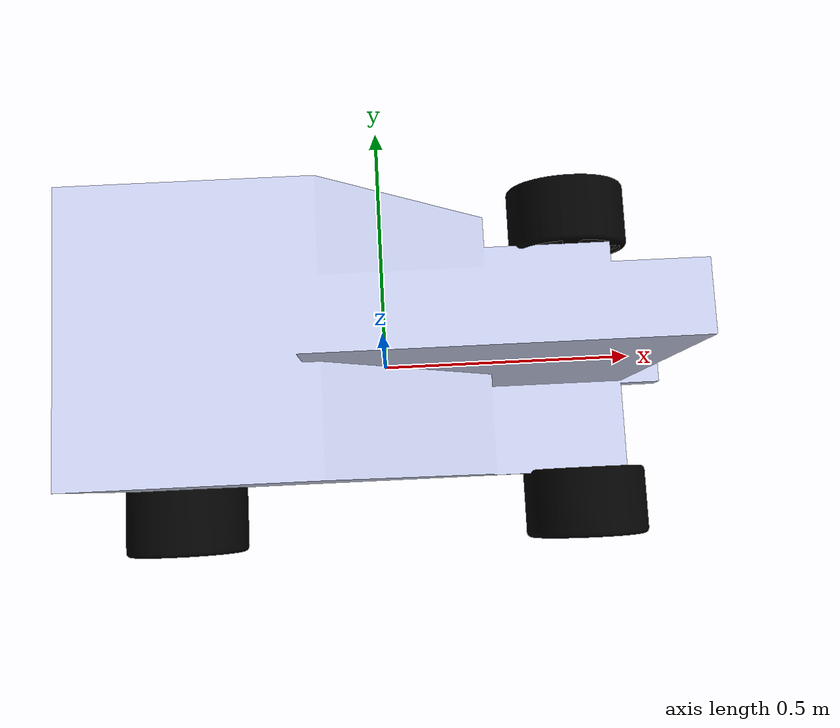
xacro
<?xml version="1.0"?>
<robot xmlns:xacro="http://www.ros.org/wiki/xacro" >

<!--base link-->    <!--base link-->    <!--base link-->

<link
    name="base_link">
    <inertial>
      <origin
        xyz="-0.13844 2.9617E-17 0.28804"
        rpy="0 0 0" />
      <mass
        value="195.18" />
      <inertia
        ixx="10.204"
        ixy="9.4366E-16"
        ixz="1.8552"
        iyy="16.796"
        iyz="1.5571E-16"
        izz="13.278" />
    </inertial>
    <visual>
      <origin
        xyz="0 0 0"
        rpy="0 0 0" />
      <geometry>
        <mesh
          filename="package://firefighting_robot/meshes/base_link.STL" />
      </geometry>
      <material
        name="">
        <color
          rgba="0.79216 0.81961 0.93333 1" />
      </material>
    </visual>
    <collision>
      <origin
        xyz="0 0 0"
        rpy="0 0 0" />
      <geometry>
        <mesh
          filename="package://firefighting_robot/meshes/base_link.STL" />
      </geometry>
    </collision>
  </link>

    <!--front right wheel link-->    <!--front right wheel link-->

  <link
    name="front_right_wheel">
    <inertial>
      <origin
        xyz="0 0 0"
        rpy="0 0 0" />
      <mass
        value="3.32604990797157" />
      <inertia
        ixx="0.018692163319591"
        ixy="-2.92237196302102E-19"
        ixz="5.9557004103818E-19"
        iyy="0.0292171191774648"
        iyz="-5.64461649269559E-19"
        izz="0.018692163319591" />
    </inertial>
    <visual>
      <origin
        xyz="0 0 0"
        rpy="0 0 0" />
      <geometry>
        <mesh
          filename="package://firefighting_robot/meshes/front_right_wheel.STL" />
      </geometry>
      <material
        name="">
        <color
          rgba="0.0 0.0 0.0 1" />
      </material>
    </visual>
    <collision>
      <origin
        xyz="0 0 0"
        rpy="0 0 0" />
      <geometry>
        <mesh
          filename="package://firefighting_robot/meshes/front_right_wheel.STL" />
      </geometry>
    </collision>
  </link>

    <!--front right wheel joint-->  <!--front right wheel joint-->

  <joint
    name="front_right_joint"
    type="continuous">
    <origin
      xyz="0 0 0"
      rpy="0 0 0" />
    <parent
      link="base_link" />
    <child
      link="front_right_wheel" />
    <axis
      xyz="-1 0 0" />
    <limit
      effort="10"
      velocity="10" />
    <dynamics
      damping="0.1"
      friction="0.1" />
  </joint>

        <!--front left wheel link-->    <!--front left wheel link-->

  <link
    name="front_left_wheel">
    <inertial>
      <origin
        xyz="0.388676783285233 0.287811988303703 0.02"
        rpy="0 0 0" />
      <mass
        value="3.32604990797157" />
      <inertia
        ixx="0.018692163319591"
        ixy="-2.29939980139689E-19"
        ixz="-8.65230920730467E-19"
        iyy="0.0292171191774648"
        iyz="3.88119296474855E-19"
        izz="0.018692163319591" />
    </inertial>
    <visual>
      <origin
        xyz="0 0 0"
        rpy="0 0 0" />
      <geometry>
        <mesh
          filename="package://firefighting_robot/meshes/front_left_wheel.STL" />
      </geometry>
      <material
        name="">
        <color
          rgba="0.0 0.0 0.0 1" />
      </material>
    </visual>
    <collision>
      <origin
        xyz="0 0 0"
        rpy="0 0 0" />
      <geometry>
        <mesh
          filename="package://firefighting_robot/meshes/front_left_wheel.STL" />
      </geometry>
    </collision>
  </link>

        <!--front left wheel joint-->  <!--front left wheel joint-->

  <joint
    name="front_left_joint"
    type="continuous">
    <origin
      xyz="0 0 0"
      rpy="0 0 0" />
    <parent
      link="base_link" />
    <child
      link="front_left_wheel" />
    <axis
      xyz="1 0 0" />
    <limit
      effort="10"
      velocity="10" />
    <dynamics
      damping="0.1"
      friction="0.1" />
  </joint>

        <!--back left wheel link--> <!--back left wheel link-->

  <link
    name="back_left_wheel">
    <inertial>
      <origin
        xyz="-0.410323216714768 0.287811988303703 0.02"
        rpy="0 0 0" />
      <mass
        value="3.32604990797157" />
      <inertia
        ixx="0.018692163319591"
        ixy="-1.66149418764528E-18"
        ixz="9.60491598817437E-19"
        iyy="0.0292171191774648"
        iyz="4.64513303361302E-19"
        izz="0.018692163319591" />
    </inertial>
    <visual>
      <origin
        xyz="0 0 0"
        rpy="0 0 0" />
      <geometry>
        <mesh
          filename="package://firefighting_robot/meshes/back_left_wheel.STL" />
      </geometry>
      <material
        name="">
        <color
          rgba="0.0 0.0 0.0 1" />
      </material>
    </visual>
    <collision>
      <origin
        xyz="0 0 0"
        rpy="0 0 0" />
      <geometry>
        <mesh
          filename="package://firefighting_robot/meshes/back_left_wheel.STL" />
      </geometry>
    </collision>
  </link>

        <!--back left wheel joint--> <!--back left wheel joint-->

  <joint
    name="back_left_joint"
    type="continuous">
    <origin
      xyz="0 0 0"
      rpy="0 0 0" />
    <parent
      link="base_link" />
    <child
      link="back_left_wheel" />
    <axis
      xyz="1 0 0" />
    <limit
      effort="10"
      velocity="10" />
    <dynamics
      damping="0.1"
      friction="0.1" />
  </joint>

        <!--back right wheel link-->     <!--back right wheel link-->

  <link
    name="back_right_wheel">
    <inertial>
      <origin
        xyz="0 0 0"
        rpy="0 0 0" />
      <mass
        value="0" />
      <inertia
        ixx="0"
        ixy="0"
        ixz="0"
        iyy="0"
        iyz="0"
        izz="0" />
    </inertial>
    <visual>
      <origin
        xyz="0 0 0"
        rpy="0 0 0" />
      <geometry>
        <mesh
          filename="package://firefighting_robot/meshes/back_right_wheel.STL" />
      </geometry>
      <material
        name="">
        <color
          rgba="0.0 0.0 0.0 1" />
      </material>
    </visual>
    <collision>
      <origin
        xyz="0 0 0"
        rpy="0 0 0" />
      <geometry>
        <mesh
          filename="package://firefighting_robot/meshes/back_right_wheel.STL" />
      </geometry>
    </collision>
  </link>

    <!--back right wheel joint-->

  <joint
    name="back_right_joint"
    type="continuous">
    <origin
      xyz="0 0 0"
      rpy="0 0 0" />
    <parent
      link="base_link" />
    <child
      link="back_right_wheel" />
    <axis
      xyz="-1 0 0" />
    <limit
      effort="10"
      velocity="10" />
    <dynamics
      damping="0.1"
      friction="0.1" />
  </joint>

</robot>
